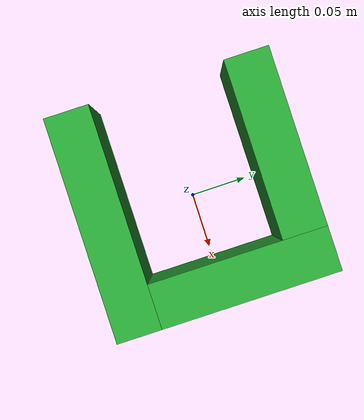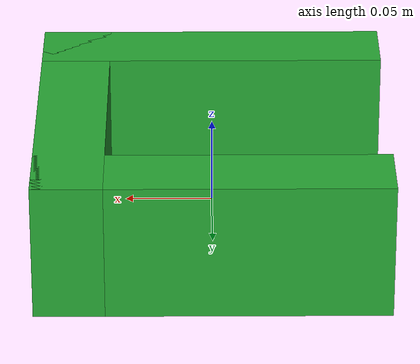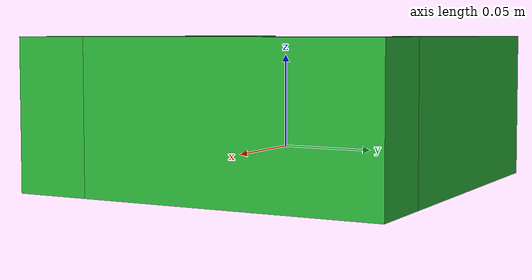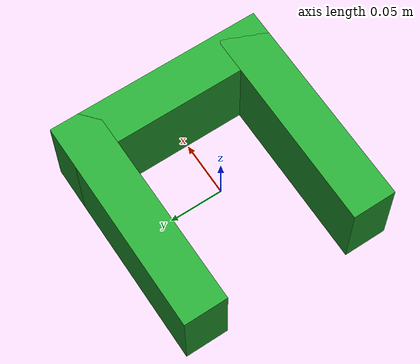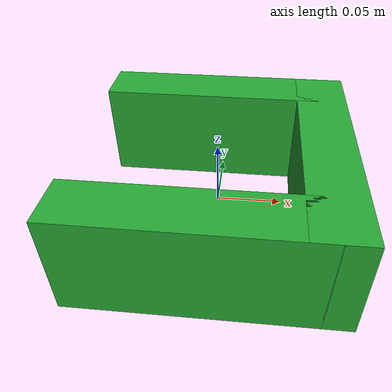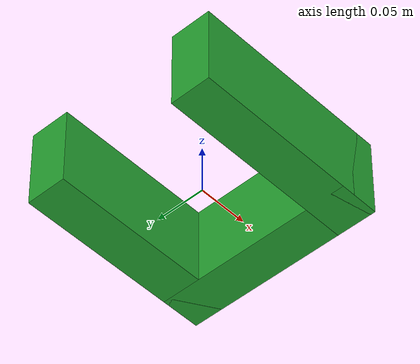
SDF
<?xml version='1.0'?>
<sdf version='1.6'>
  <model name='green_frame'>
    <pose>0 0 0 0 0 0</pose>

    <link name='Wall_0'>
      <collision name='Wall_0_Collision'>
        <geometry>
          <box>
            <size>0.2 0.04 0.08</size>
          </box>
        </geometry>
        <pose>0 0 0.02 0 -0 0</pose>
      </collision>
      <visual name='Wall_0_Visual'>
        <pose>0 0 0.02 0 -0 0</pose>
        <geometry>
          <box>
            <size>0.2 0.04 0.08</size>
          </box>
        </geometry>
        <material>
          <script>
            <uri>file://media/materials/scripts/gazebo.material</uri>
            <name>Gazebo/GreenGlow</name>
          </script>
          <ambient>1 1 1 1</ambient>
        </material>
        <meta>
          <layer>0</layer>
        </meta>
      </visual>
      <pose> 0 -0.08 0 0 -0 0</pose>
    </link>

    <link name='Wall_1'>
      <collision name='Wall_1_Collision'>
        <geometry>
          <box>
            <size>0.2 0.04 0.08</size>
          </box>
        </geometry>
        <pose>0 0 0.02 0 -0 0</pose>
      </collision>
      <visual name='Wall_1_Visual'>
        <pose>0 0 0.02 0 -0 0</pose>
        <geometry>
          <box>
            <size>0.2 0.04 0.08</size>
          </box>
        </geometry>
        <material>
          <script>
            <uri>file://media/materials/scripts/gazebo.material</uri>
            <name>Gazebo/GreenGlow</name>
          </script>
          <ambient>1 1 1 1</ambient>
        </material>
        <meta>
          <layer>0</layer>
        </meta>
      </visual>
      <pose>0.08 0 0 0 -0 -1.5708</pose> <!-- -1.5708=-pi/2 -->
    </link>

    <link name='Wall_2'>
      <collision name='Wall_2_Collision'>
        <geometry>
          <box>
            <size>0.2 0.04 0.08</size>
          </box>
        </geometry>
        <pose>0 0 0.02 0 -0 0</pose>
      </collision>
      <visual name='Wall_2_Visual'>
        <pose>0 0 0.02 0 -0 0</pose>
        <geometry>
          <box>
            <size>0.2 0.04 0.08</size>
          </box>
        </geometry>
        <material>
          <script>
            <uri>file://media/materials/scripts/gazebo.material</uri>
            <name>Gazebo/GreenGlow</name>
          </script>
          <ambient>1 1 1 1</ambient>
        </material>
        <meta>
          <layer>0</layer>
        </meta>
      </visual>
      <pose>0 0.08 0 0 -0 3.14159</pose>
    </link>

    <static>1</static>
  </model>
</sdf>
